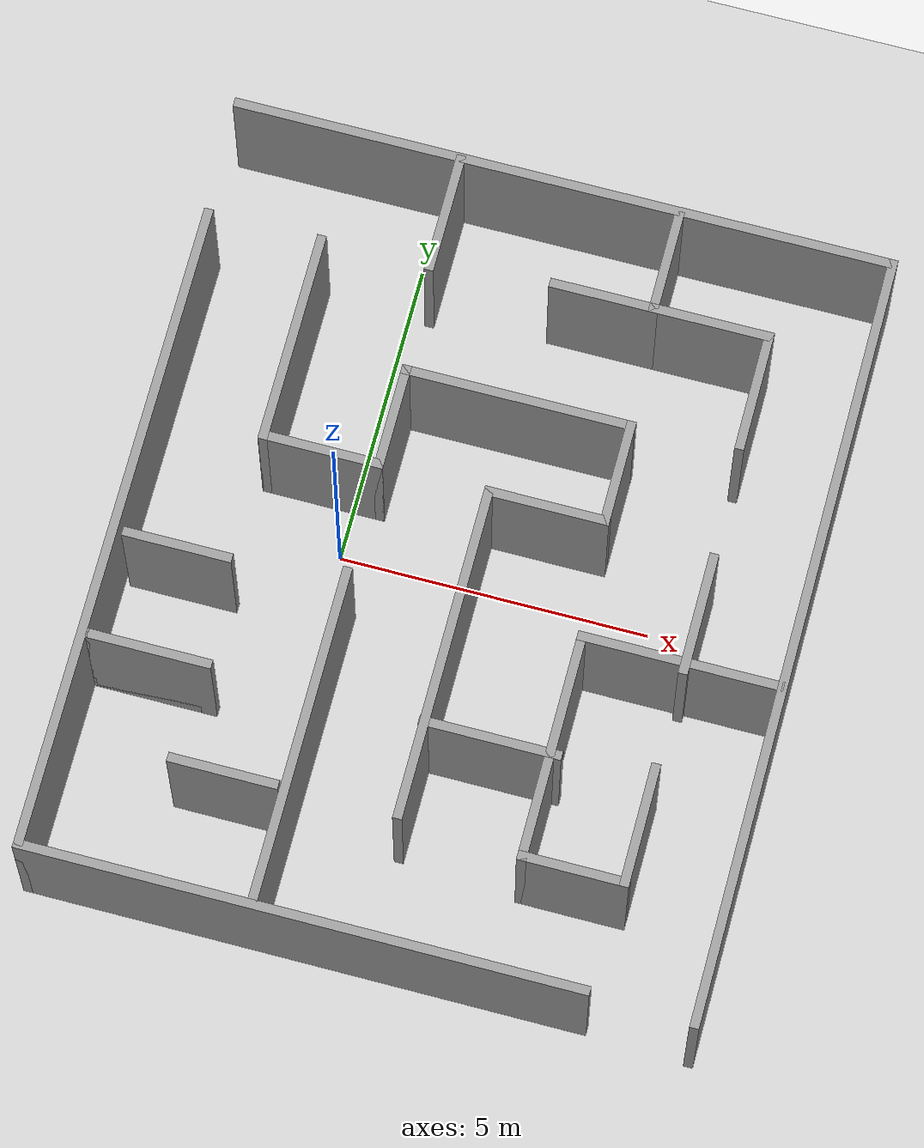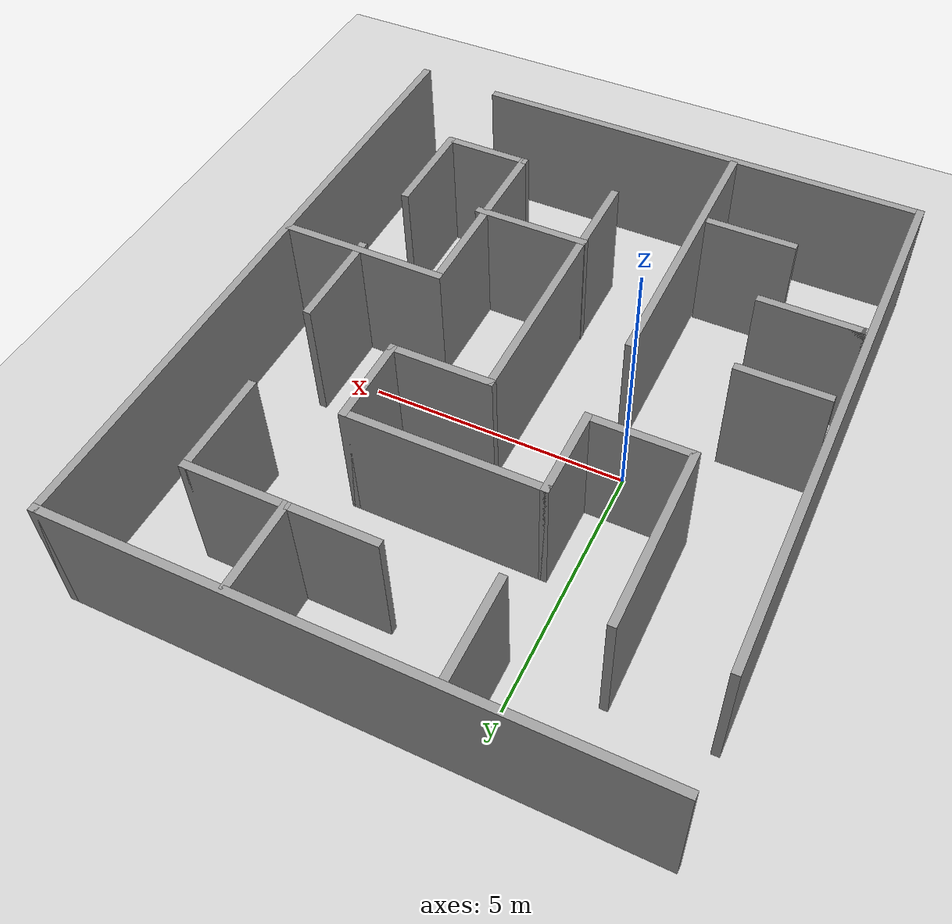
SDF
<sdf version="1.7">
 <world name="default">
  <light name="sun" type="directional">
   <pose>0 0 10 0 -0 0</pose>
   <diffuse>0.8 0.8 0.8 1</diffuse>
   <specular>0.2 0.2 0.2 1</specular>
   <attenuation>
    <range>1000</range>
    <constant>0.9</constant>
    <linear>0.01</linear>
    <quadratic>0.001</quadratic>
   </attenuation>
   <direction>-0.5 0.1 -0.9</direction>
   <spot><inner_angle>0</inner_angle><outer_angle>0</outer_angle><falloff>0</falloff></spot>
  </light>
  <model name="ground_plane">
   <static>1</static>
   <link name="link">
    <collision name="collision">
     <geometry><plane><normal>0 0 1</normal><size>100 100</size></plane></geometry>
     <surface>
      <contact><collide_bitmask>65535</collide_bitmask></contact>
      <friction><ode><mu>100</mu><mu2>50</mu2></ode></friction>
     </surface>
    </collision>
    <visual name="visual">
     <cast_shadows>0</cast_shadows>
     <geometry><plane><normal>0 0 1</normal><size>100 100</size></plane></geometry>
     <material>
      <script><uri>file://media/materials/scripts/gazebo.material</uri><name>Gazebo/Grey</name></script>
     </material>
    </visual>
   </link>
  </model>
  <gravity>0 0 -9.8</gravity>
  <magnetic_field>6e-06 2.3e-05 -4.2e-05</magnetic_field>
  <atmosphere type="adiabatic"/>
  <physics type="ode">
   <max_step_size>0.001</max_step_size>
   <real_time_factor>1</real_time_factor>
   <real_time_update_rate>1000</real_time_update_rate>
  </physics>
  <scene><ambient>0.4 0.4 0.4 1</ambient><background>0.7 0.7 0.7 1</background><shadows>1</shadows></scene>
  <spherical_coordinates>
   <surface_model>EARTH_WGS84</surface_model>
   <latitude_deg>0</latitude_deg>
   <longitude_deg>0</longitude_deg>
   <elevation>0</elevation>
   <heading_deg>0</heading_deg>
  </spherical_coordinates>
  <model name="Untitled">
   <pose>2.01353 -0.199887 0 0 -0 0</pose>
   <link name="Wall_0">
    <collision name="Wall_0_Collision">
     <geometry><box><size>10.75 0.15 2.5</size></box></geometry>
     <pose>0 0 1.25 0 -0 0</pose>
    </collision>
    <visual name="Wall_0_Visual">
     <pose>0 0 1.25 0 -0 0</pose>
     <geometry><box><size>10.75 0.15 2.5</size></box></geometry>
     <material>
      <script><uri>file://media/materials/scripts/gazebo.material</uri><name>Gazebo/Grey</name></script>
      <ambient>1 1 1 1</ambient>
     </material>
     <meta><layer>0</layer></meta>
    </visual>
    <pose>-0 6.3 0 0 -0 0</pose>
   </link>
   <link name="Wall_1">
    <collision name="Wall_1_Collision">
     <geometry><box><size>12.75 0.15 2.5</size></box></geometry>
     <pose>0 0 1.25 0 -0 0</pose>
    </collision>
    <visual name="Wall_1_Visual">
     <pose>0 0 1.25 0 -0 0</pose>
     <geometry><box><size>12.75 0.15 2.5</size></box></geometry>
     <material>
      <script><uri>file://media/materials/scripts/gazebo.material</uri><name>Gazebo/Grey</name></script>
      <ambient>1 1 1 1</ambient>
     </material>
     <meta><layer>0</layer></meta>
    </visual>
    <pose>5.3 -0 0 0 -0 -1.5708</pose>
   </link>
   <link name="Wall_10">
    <collision name="Wall_10_Collision">
     <geometry><box><size>1.75 0.15 2.5</size></box></geometry>
     <pose>0 0 1.25 0 -0 0</pose>
    </collision>
    <visual name="Wall_10_Visual">
     <pose>0 0 1.25 0 -0 0</pose>
     <geometry><box><size>1.75 0.15 2.5</size></box></geometry>
     <material>
      <script><uri>file://media/materials/scripts/gazebo.material</uri><name>Gazebo/Grey</name></script>
      <ambient>1 1 1 1</ambient>
     </material>
     <meta><layer>0</layer></meta>
    </visual>
    <pose>-1.58553 1.85035 0 0 -0 1.5708</pose>
   </link>
   <link name="Wall_11">
    <collision name="Wall_11_Collision">
     <geometry><box><size>3.75 0.15 2.5</size></box></geometry>
     <pose>0 0 1.25 0 -0 0</pose>
    </collision>
    <visual name="Wall_11_Visual">
     <pose>0 0 1.25 0 -0 0</pose>
     <geometry><box><size>3.75 0.15 2.5</size></box></geometry>
     <material>
      <script><uri>file://media/materials/scripts/gazebo.material</uri><name>Gazebo/Grey</name></script>
      <ambient>1 1 1 1</ambient>
     </material>
     <meta><layer>0</layer></meta>
    </visual>
    <pose>0.214474 2.65035 0 0 -0 0</pose>
   </link>
   <link name="Wall_12">
    <collision name="Wall_12_Collision">
     <geometry><box><size>1.75 0.15 2.5</size></box></geometry>
     <pose>0 0 1.25 0 -0 0</pose>
    </collision>
    <visual name="Wall_12_Visual">
     <pose>0 0 1.25 0 -0 0</pose>
     <geometry><box><size>1.75 0.15 2.5</size></box></geometry>
     <material>
      <script><uri>file://media/materials/scripts/gazebo.material</uri><name>Gazebo/Grey</name></script>
      <ambient>1 1 1 1</ambient>
     </material>
     <meta><layer>0</layer></meta>
    </visual>
    <pose>2.01447 1.85035 0 0 -0 -1.5708</pose>
   </link>
   <link name="Wall_15">
    <collision name="Wall_15_Collision">
     <geometry><box><size>2 0.15 2.5</size></box></geometry>
     <pose>0 0 1.25 0 -0 0</pose>
    </collision>
    <visual name="Wall_15_Visual">
     <pose>0 0 1.25 0 -0 0</pose>
     <geometry><box><size>2 0.15 2.5</size></box></geometry>
     <material>
      <script><uri>file://media/materials/scripts/gazebo.material</uri><name>Gazebo/Grey</name></script>
      <ambient>1 1 1 1</ambient>
     </material>
     <meta><layer>0</layer></meta>
    </visual>
    <pose>1.08947 1.05035 0 0 -0 3.14159</pose>
   </link>
   <link name="Wall_16">
    <collision name="Wall_16_Collision">
     <geometry><box><size>5.5 0.15 2.5</size></box></geometry>
     <pose>0 0 1.25 0 -0 0</pose>
    </collision>
    <visual name="Wall_16_Visual">
     <pose>0 0 1.25 0 -0 0</pose>
     <geometry><box><size>5.5 0.15 2.5</size></box></geometry>
     <material>
      <script><uri>file://media/materials/scripts/gazebo.material</uri><name>Gazebo/Grey</name></script>
      <ambient>1 1 1 1</ambient>
     </material>
     <meta><layer>0</layer></meta>
    </visual>
    <pose>0.164474 -1.62465 0 0 -0 -1.5708</pose>
   </link>
   <link name="Wall_18">
    <collision name="Wall_18_Collision">
     <geometry><box><size>2 0.15 2.5</size></box></geometry>
     <pose>0 0 1.25 0 -0 0</pose>
    </collision>
    <visual name="Wall_18_Visual">
     <pose>0 0 1.25 0 -0 0</pose>
     <geometry><box><size>2 0.15 2.5</size></box></geometry>
     <material>
      <script><uri>file://media/materials/scripts/gazebo.material</uri><name>Gazebo/Grey</name></script>
      <ambient>1 1 1 1</ambient>
     </material>
     <meta><layer>0</layer></meta>
    </visual>
    <pose>-1.67659 5.33982 0 0 -0 -1.5708</pose>
   </link>
   <link name="Wall_20">
    <collision name="Wall_20_Collision">
     <geometry><box><size>1.75 0.15 2.5</size></box></geometry>
     <pose>0 0 1.25 0 -0 0</pose>
    </collision>
    <visual name="Wall_20_Visual">
     <pose>0 0 1.25 0 -0 0</pose>
     <geometry><box><size>1.75 0.15 2.5</size></box></geometry>
     <material>
      <script><uri>file://media/materials/scripts/gazebo.material</uri><name>Gazebo/Grey</name></script>
      <ambient>1 1 1 1</ambient>
     </material>
     <meta><layer>0</layer></meta>
    </visual>
    <pose>1.87647 5.42964 0 0 -0 -1.5708</pose>
   </link>
   <link name="Wall_21">
    <collision name="Wall_21_Collision">
     <geometry><box><size>1.75 0.15 2.5</size></box></geometry>
     <pose>0 0 1.25 0 -0 0</pose>
    </collision>
    <visual name="Wall_21_Visual">
     <pose>0 0 1.25 0 -0 0</pose>
     <geometry><box><size>1.75 0.15 2.5</size></box></geometry>
     <material>
      <script><uri>file://media/materials/scripts/gazebo.material</uri><name>Gazebo/Grey</name></script>
      <ambient>1 1 1 1</ambient>
     </material>
     <meta><layer>0</layer></meta>
    </visual>
    <pose>1.07647 4.62964 0 0 -0 3.14159</pose>
   </link>
   <link name="Wall_23">
    <collision name="Wall_23_Collision">
     <geometry><box><size>2 0.15 2.5</size></box></geometry>
     <pose>0 0 1.25 0 -0 0</pose>
    </collision>
    <visual name="Wall_23_Visual">
     <pose>0 0 1.25 0 -0 0</pose>
     <geometry><box><size>2 0.15 2.5</size></box></geometry>
     <material>
      <script><uri>file://media/materials/scripts/gazebo.material</uri><name>Gazebo/Grey</name></script>
      <ambient>1 1 1 1</ambient>
     </material>
     <meta><layer>0</layer></meta>
    </visual>
    <pose>2.80147 4.62964 0 0 -0 0</pose>
   </link>
   <link name="Wall_24">
    <collision name="Wall_24_Collision">
     <geometry><box><size>2 0.15 2.5</size></box></geometry>
     <pose>0 0 1.25 0 -0 0</pose>
    </collision>
    <visual name="Wall_24_Visual">
     <pose>0 0 1.25 0 -0 0</pose>
     <geometry><box><size>2 0.15 2.5</size></box></geometry>
     <material>
      <script><uri>file://media/materials/scripts/gazebo.material</uri><name>Gazebo/Grey</name></script>
      <ambient>1 1 1 1</ambient>
     </material>
     <meta><layer>0</layer></meta>
    </visual>
    <pose>3.72647 3.70464 0 0 -0 -1.5708</pose>
   </link>
   <link name="Wall_26">
    <collision name="Wall_26_Collision">
     <geometry><box><size>2 0.15 2.5</size></box></geometry>
     <pose>0 0 1.25 0 -0 0</pose>
    </collision>
    <visual name="Wall_26_Visual">
     <pose>0 0 1.25 0 -0 0</pose>
     <geometry><box><size>2 0.15 2.5</size></box></geometry>
     <material>
      <script><uri>file://media/materials/scripts/gazebo.material</uri><name>Gazebo/Grey</name></script>
      <ambient>1 1 1 1</ambient>
     </material>
     <meta><layer>0</layer></meta>
    </visual>
    <pose>3.77612 -0.04253 0 0 -0 -1.5708</pose>
   </link>
   <link name="Wall_28">
    <collision name="Wall_28_Collision">
     <geometry><box><size>2 0.15 2.5</size></box></geometry>
     <pose>0 0 1.25 0 -0 0</pose>
    </collision>
    <visual name="Wall_28_Visual">
     <pose>0 0 1.25 0 -0 0</pose>
     <geometry><box><size>2 0.15 2.5</size></box></geometry>
     <material>
      <script><uri>file://media/materials/scripts/gazebo.material</uri><name>Gazebo/Grey</name></script>
      <ambient>1 1 1 1</ambient>
     </material>
     <meta><layer>0</layer></meta>
    </visual>
    <pose>3.74094 -3.52523 0 0 -0 -1.5708</pose>
   </link>
   <link name="Wall_29">
    <collision name="Wall_29_Collision">
     <geometry><box><size>1.75 0.15 2.5</size></box></geometry>
     <pose>0 0 1.25 0 -0 0</pose>
    </collision>
    <visual name="Wall_29_Visual">
     <pose>0 0 1.25 0 -0 0</pose>
     <geometry><box><size>1.75 0.15 2.5</size></box></geometry>
     <material>
      <script><uri>file://media/materials/scripts/gazebo.material</uri><name>Gazebo/Grey</name></script>
      <ambient>1 1 1 1</ambient>
     </material>
     <meta><layer>0</layer></meta>
    </visual>
    <pose>2.94094 -4.45023 0 0 -0 3.14159</pose>
   </link>
   <link name="Wall_30">
    <collision name="Wall_30_Collision">
     <geometry><box><size>3.75 0.15 2.5</size></box></geometry>
     <pose>0 0 1.25 0 -0 0</pose>
    </collision>
    <visual name="Wall_30_Visual">
     <pose>0 0 1.25 0 -0 0</pose>
     <geometry><box><size>3.75 0.15 2.5</size></box></geometry>
     <material>
      <script><uri>file://media/materials/scripts/gazebo.material</uri><name>Gazebo/Grey</name></script>
      <ambient>1 1 1 1</ambient>
     </material>
     <meta><layer>0</layer></meta>
    </visual>
    <pose>2.14094 -2.65023 0 0 -0 1.5708</pose>
   </link>
   <link name="Wall_31">
    <collision name="Wall_31_Collision">
     <geometry><box><size>3.25 0.15 2.5</size></box></geometry>
     <pose>0 0 1.25 0 -0 0</pose>
    </collision>
    <visual name="Wall_31_Visual">
     <pose>0 0 1.25 0 -0 0</pose>
     <geometry><box><size>3.25 0.15 2.5</size></box></geometry>
     <material>
      <script><uri>file://media/materials/scripts/gazebo.material</uri><name>Gazebo/Grey</name></script>
      <ambient>1 1 1 1</ambient>
     </material>
     <meta><layer>0</layer></meta>
    </visual>
    <pose>3.69094 -0.850227 0 0 -0 0</pose>
   </link>
   <link name="Wall_33">
    <collision name="Wall_33_Collision">
     <geometry><box><size>5.5 0.15 2.5</size></box></geometry>
     <pose>0 0 1.25 0 -0 0</pose>
    </collision>
    <visual name="Wall_33_Visual">
     <pose>0 0 1.25 0 -0 0</pose>
     <geometry><box><size>5.5 0.15 2.5</size></box></geometry>
     <material>
      <script><uri>file://media/materials/scripts/gazebo.material</uri><name>Gazebo/Grey</name></script>
      <ambient>1 1 1 1</ambient>
     </material>
     <meta><layer>0</layer></meta>
    </visual>
    <pose>-1.60623 -3.44593 0 0 -0 -1.5708</pose>
   </link>
   <link name="Wall_35">
    <collision name="Wall_35_Collision">
     <geometry><box><size>1.75 0.15 2.5</size></box></geometry>
     <pose>0 0 1.25 0 -0 0</pose>
    </collision>
    <visual name="Wall_35_Visual">
     <pose>0 0 1.25 0 -0 0</pose>
     <geometry><box><size>1.75 0.15 2.5</size></box></geometry>
     <material>
      <script><uri>file://media/materials/scripts/gazebo.material</uri><name>Gazebo/Grey</name></script>
      <ambient>1 1 1 1</ambient>
     </material>
     <meta><layer>0</layer></meta>
    </visual>
    <pose>-4.23553 -1.01718 0 0 -0 3.14159</pose>
   </link>
   <link name="Wall_37">
    <collision name="Wall_37_Collision">
     <geometry><box><size>1.75 0.15 2.5</size></box></geometry>
     <pose>0 0 1.25 0 -0 0</pose>
    </collision>
    <visual name="Wall_37_Visual">
     <pose>0 0 1.25 0 -0 0</pose>
     <geometry><box><size>1.75 0.15 2.5</size></box></geometry>
     <material>
      <script><uri>file://media/materials/scripts/gazebo.material</uri><name>Gazebo/Grey</name></script>
      <ambient>1 1 1 1</ambient>
     </material>
     <meta><layer>0</layer></meta>
    </visual>
    <pose>-4.32411 -2.74094 0 0 -0 0</pose>
   </link>
   <link name="Wall_39">
    <collision name="Wall_39_Collision">
     <geometry><box><size>1.75 0.15 2.5</size></box></geometry>
     <pose>0 0 1.25 0 -0 0</pose>
    </collision>
    <visual name="Wall_39_Visual">
     <pose>0 0 1.25 0 -0 0</pose>
     <geometry><box><size>1.75 0.15 2.5</size></box></geometry>
     <material>
      <script><uri>file://media/materials/scripts/gazebo.material</uri><name>Gazebo/Grey</name></script>
      <ambient>1 1 1 1</ambient>
     </material>
     <meta><layer>0</layer></meta>
    </visual>
    <pose>-2.58212 -4.32399 0 0 -0 3.14159</pose>
   </link>
   <link name="Wall_4">
    <collision name="Wall_4_Collision">
     <geometry><box><size>9 0.15 2.5</size></box></geometry>
     <pose>0 0 1.25 0 -0 0</pose>
    </collision>
    <visual name="Wall_4_Visual">
     <pose>0 0 1.25 0 -0 0</pose>
     <geometry><box><size>9 0.15 2.5</size></box></geometry>
     <material>
      <script><uri>file://media/materials/scripts/gazebo.material</uri><name>Gazebo/Grey</name></script>
      <ambient>1 1 1 1</ambient>
     </material>
     <meta><layer>0</layer></meta>
    </visual>
    <pose>-0.839822 -6.22364 0 0 -0 0</pose>
   </link>
   <link name="Wall_41">
    <collision name="Wall_41_Collision">
     <geometry><box><size>2 0.15 2.5</size></box></geometry>
     <pose>0 0 1.25 0 -0 0</pose>
    </collision>
    <visual name="Wall_41_Visual">
     <pose>0 0 1.25 0 -0 0</pose>
     <geometry><box><size>2 0.15 2.5</size></box></geometry>
     <material>
      <script><uri>file://media/materials/scripts/gazebo.material</uri><name>Gazebo/Grey</name></script>
      <ambient>1 1 1 1</ambient>
     </material>
     <meta><layer>0</layer></meta>
    </visual>
    <pose>-4.19911 -2.74094 0 0 -0 0</pose>
   </link>
   <link name="Wall_43">
    <collision name="Wall_43_Collision">
     <geometry><box><size>2.25 0.15 2.5</size></box></geometry>
     <pose>0 0 1.25 0 -0 0</pose>
    </collision>
    <visual name="Wall_43_Visual">
     <pose>0 0 1.25 0 -0 0</pose>
     <geometry><box><size>2.25 0.15 2.5</size></box></geometry>
     <material>
      <script><uri>file://media/materials/scripts/gazebo.material</uri><name>Gazebo/Grey</name></script>
      <ambient>1 1 1 1</ambient>
     </material>
     <meta><layer>0</layer></meta>
    </visual>
    <pose>1.20271 -2.77612 0 0 -0 0</pose>
   </link>
   <link name="Wall_6">
    <collision name="Wall_6_Collision">
     <geometry><box><size>10.75 0.15 2.5</size></box></geometry>
     <pose>0 0 1.25 0 -0 0</pose>
    </collision>
    <visual name="Wall_6_Visual">
     <pose>0 0 1.25 0 -0 0</pose>
     <geometry><box><size>10.75 0.15 2.5</size></box></geometry>
     <material>
      <script><uri>file://media/materials/scripts/gazebo.material</uri><name>Gazebo/Grey</name></script>
      <ambient>1 1 1 1</ambient>
     </material>
     <meta><layer>0</layer></meta>
    </visual>
    <pose>-5.26482 -0.92364 0 0 -0 1.5708</pose>
   </link>
   <link name="Wall_8">
    <collision name="Wall_8_Collision">
     <geometry><box><size>3.5 0.15 2.5</size></box></geometry>
     <pose>0 0 1.25 0 -0 0</pose>
    </collision>
    <visual name="Wall_8_Visual">
     <pose>0 0 1.25 0 -0 0</pose>
     <geometry><box><size>3.5 0.15 2.5</size></box></geometry>
     <material>
      <script><uri>file://media/materials/scripts/gazebo.material</uri><name>Gazebo/Grey</name></script>
      <ambient>1 1 1 1</ambient>
     </material>
     <meta><layer>0</layer></meta>
    </visual>
    <pose>-3.43553 2.72535 0 0 -0 -1.5708</pose>
   </link>
   <link name="Wall_9">
    <collision name="Wall_9_Collision">
     <geometry><box><size>2 0.15 2.5</size></box></geometry>
     <pose>0 0 1.25 0 -0 0</pose>
    </collision>
    <visual name="Wall_9_Visual">
     <pose>0 0 1.25 0 -0 0</pose>
     <geometry><box><size>2 0.15 2.5</size></box></geometry>
     <material>
      <script><uri>file://media/materials/scripts/gazebo.material</uri><name>Gazebo/Grey</name></script>
      <ambient>1 1 1 1</ambient>
     </material>
     <meta><layer>0</layer></meta>
    </visual>
    <pose>-2.51053 1.05035 0 0 -0 0</pose>
   </link>
   <static>1</static>
  </model>
 </world>
</sdf>
